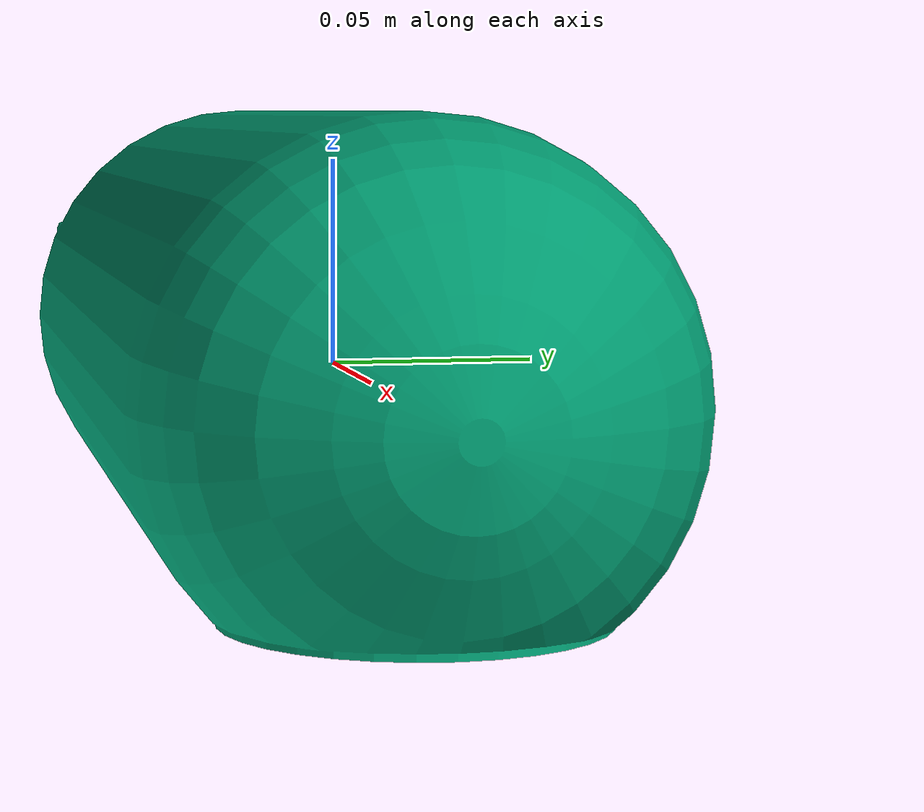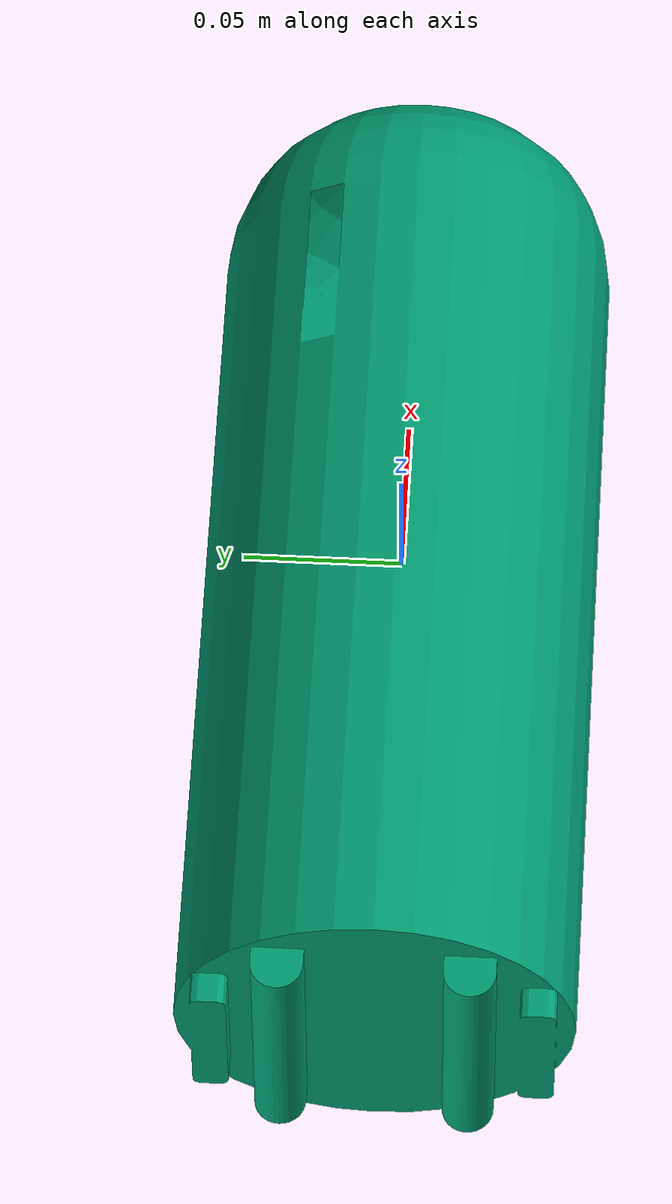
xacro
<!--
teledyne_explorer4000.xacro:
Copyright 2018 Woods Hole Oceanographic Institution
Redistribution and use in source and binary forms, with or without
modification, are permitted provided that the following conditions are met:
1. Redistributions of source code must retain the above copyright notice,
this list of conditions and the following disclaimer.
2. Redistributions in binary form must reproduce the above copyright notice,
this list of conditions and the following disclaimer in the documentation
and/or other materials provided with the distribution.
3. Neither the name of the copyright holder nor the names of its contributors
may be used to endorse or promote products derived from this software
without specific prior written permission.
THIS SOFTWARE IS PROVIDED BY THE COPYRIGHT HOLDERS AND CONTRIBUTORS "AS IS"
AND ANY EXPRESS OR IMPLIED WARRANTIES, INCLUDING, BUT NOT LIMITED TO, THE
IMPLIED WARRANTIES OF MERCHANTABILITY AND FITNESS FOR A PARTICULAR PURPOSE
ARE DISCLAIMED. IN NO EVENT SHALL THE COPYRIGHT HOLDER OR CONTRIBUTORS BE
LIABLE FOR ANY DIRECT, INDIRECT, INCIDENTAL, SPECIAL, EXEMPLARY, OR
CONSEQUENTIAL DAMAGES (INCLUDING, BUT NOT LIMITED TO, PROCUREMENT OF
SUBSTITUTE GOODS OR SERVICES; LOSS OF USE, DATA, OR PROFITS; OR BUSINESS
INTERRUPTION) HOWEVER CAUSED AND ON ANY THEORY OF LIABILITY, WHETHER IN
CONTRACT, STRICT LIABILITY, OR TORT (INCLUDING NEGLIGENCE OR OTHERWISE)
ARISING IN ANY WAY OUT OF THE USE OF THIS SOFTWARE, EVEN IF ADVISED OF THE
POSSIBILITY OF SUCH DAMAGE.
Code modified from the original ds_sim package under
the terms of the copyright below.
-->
<?xml version="1.0"?>

<robot xmlns:xacro="http://www.ros.org/wiki/xacro" name="teledyne_explorer4000">

  <xacro:include filename="$(find teledyne_explorer4000_dsl_description)/urdf/teledyne_explorer4000.xacro"/>

  <link name="explorer4000_base_link"/>

  <link name="explorer4000_sensor_link">
      <origin xyz="0 0 0" rpy="0 0 0"/>
  </link>

  <joint name="explorer4000_base_joint" type="fixed">
    <origin xyz="0 0 0" rpy="0 0 0"/>  <!-- X-fwd, Y-lft, Z-up (ick!) -->
    <parent link="explorer4000_base_link"/>
    <child link="explorer4000_sensor_link"/>
  </joint>

  <!-- Attach the DVL to link -->
  <xacro:teledyne_explorer4000_macro
    name="explorer4000" namespace="explorer4000" xyz="0 0 0"
    dvl_topic="dvl" ranges_topic="ranges"
    robot_link="explorer4000_sensor_link" joint_xyz="0 0 0"/>

  <gazebo reference="explorer4000_sensor_link">
    <turnGravityOff>true</turnGravityOff>
  </gazebo>
  <gazebo reference="explorer4000_link">
    <turnGravityOff>true</turnGravityOff>
  </gazebo>

</robot>

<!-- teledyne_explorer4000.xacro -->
<robot xmlns:xacro="http://www.ros.org/wiki/xacro">

  <!-- Generates a link element with Teledyne Explorer 4000 (piston) physical & visual characteristics -->
  <xacro:macro name="teledyne_explorer4000_link" params="name xyz">
    <link name="${name}_link">
      <inertial>
        <mass value="8.6"/>
        <origin xyz="0 0 0" rpy="${pi} 0 0"/>
        <!-- Different mounting orientation than other DVLs -->
        <inertia ixx="0.021982675" ixy="0" ixz="0" iyy="0.095798804166667" iyz="0" izz="0.095798804166667"/>
      </inertial>
      <visual>
        <geometry>
          <mesh filename="package://dave_sensor_models/models/teledyne_explorer4000/meshes/MarineExplorer.dae"/>
        </geometry>
        <origin xyz="${xyz}" rpy="${-0.5*pi} 0 ${-0.5*pi}"/>
      </visual>
      <collision>
        <geometry>
          <!-- Replace cylinder with collision mesh once it's available -->
          <cylinder length="0.344" radius="0.0715"/>
        </geometry>
        <origin xyz="${xyz}" rpy="0 ${0.5*pi} 0"/>
      </collision>
    </link>
  </xacro:macro>

  <!-- Generates a sensor element with Teledyne Explorer 4000 (piston) parameters -->
  <xacro:macro name="teledyne_explorer4000_sensor"
               params="name robot_link sensor_link xyz namespace dvl_topic ranges_topic">
    <gazebo reference="${sensor_link}">
      <sensor name="${name}_sensor" type="dsros_dvl">
        <always_on>1</always_on>
        <update_rate>12.0</update_rate>
        <pose frame="">${xyz} 0 0 0</pose>

        <!-- This plugin MUST be included, because SDF sucks -->
        <plugin name="${name}_sensor_controller" filename="libdsros_ros_dvl.so">
          <robotNamespace>${namespace}</robotNamespace>
          <topicName>${dvl_topic}</topicName>
          <rangesTopicName>${ranges_topic}</rangesTopicName>
          <frameName>${name}_link</frameName>
          <pointcloudFrame>${robot_link}</pointcloudFrame>

          <!--  Explorer 4000 parameters (from vendor data sheet) -->
          <updateRateHZ>12.0</updateRateHZ>
          <gaussianNoiseBeamVel>0.019</gaussianNoiseBeamVel>
          <gaussianNoiseBeamWtrVel>0.025</gaussianNoiseBeamWtrVel>
          <gaussianNoiseBeamRange>0.1</gaussianNoiseBeamRange>
          <minRange>0.5</minRange>
          <maxRange>66.0</maxRange>
          <maxRangeDiff>10</maxRangeDiff>
          <beamAngleDeg>30.0</beamAngleDeg>
          <beamWidthDeg>3.8</beamWidthDeg>
          <beamAzimuthDeg1>-135</beamAzimuthDeg1>
          <beamAzimuthDeg2>135</beamAzimuthDeg2>
          <beamAzimuthDeg3>45</beamAzimuthDeg3>
          <beamAzimuthDeg4>-45</beamAzimuthDeg4>
          <enableWaterTrack>1</enableWaterTrack>
          <waterTrackBins>10</waterTrackBins>
          <currentProfileCoordMode>0</currentProfileCoordMode>
          <pos_z_down>true</pos_z_down>
          <collide_bitmask>0x0001</collide_bitmask>
        </plugin>
      </sensor>
    </gazebo>
  </xacro:macro>

  <xacro:macro name="teledyne_explorer4000_joint"
               params="name robot_link joint_xyz">
    <joint name="${name}_joint" type="fixed">
      <origin xyz="${joint_xyz}" rpy="${pi} 0 0"/>
      <parent link="${robot_link}"/>
      <child link="${name}_link"/>
    </joint>
  </xacro:macro>

  <xacro:macro name="teledyne_explorer4000_macro"
               params="name xyz namespace dvl_topic ranges_topic robot_link joint_xyz">
    <xacro:teledyne_explorer4000_link name="${name}" xyz="${xyz}" />
    <xacro:teledyne_explorer4000_joint name="${name}" robot_link="${robot_link}" joint_xyz="${joint_xyz}"/>
    <xacro:teledyne_explorer4000_sensor name="${name}"
                                        robot_link="${robot_link}" sensor_link="${name}_link"
                                        xyz="${xyz}" namespace="${namespace}"
                                        dvl_topic="${dvl_topic}" ranges_topic="${ranges_topic}"/>
  </xacro:macro>

</robot>
